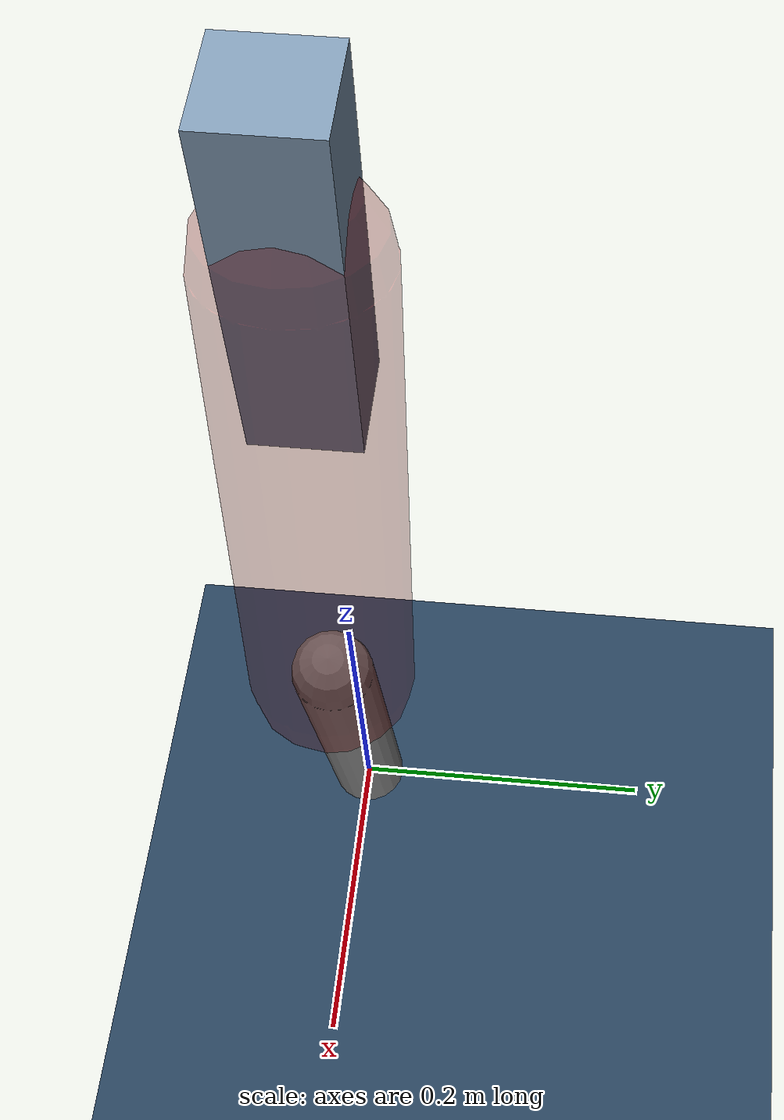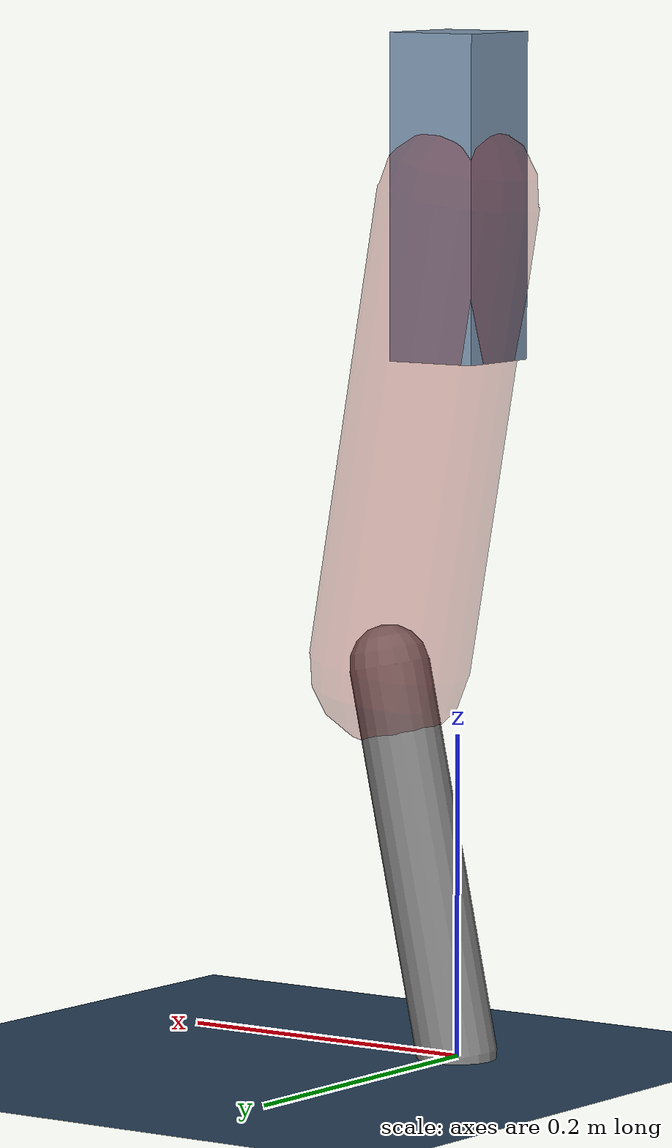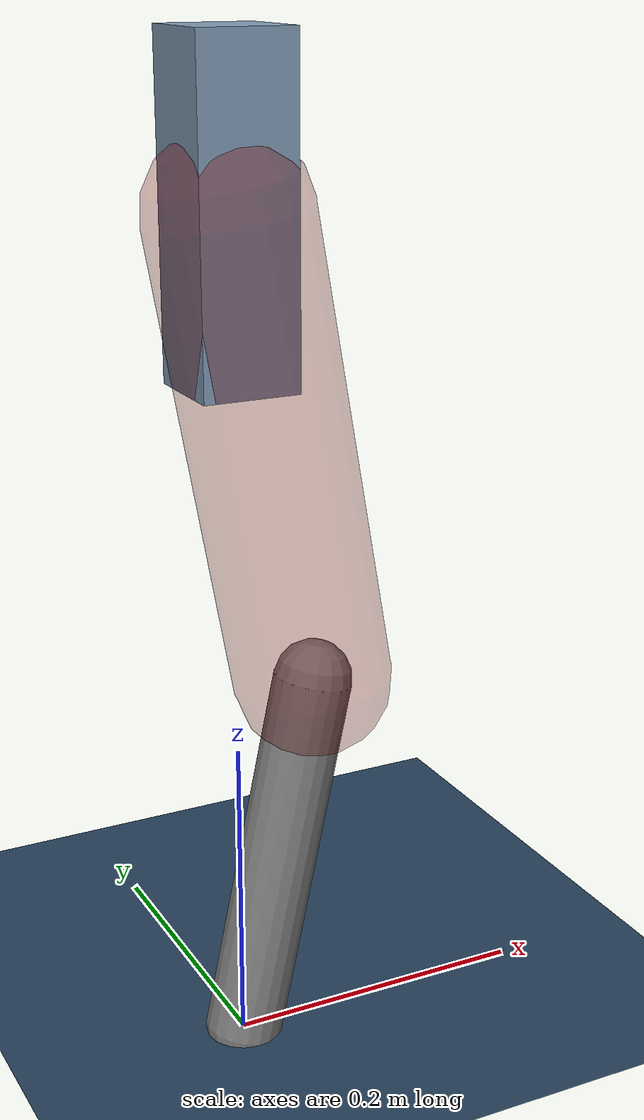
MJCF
<mujoco model="Hopper2D">
	<compiler inertiafromgeom="true" angle="radian" />
	<option timestep="0.001" integrator="implicit" cone="elliptic" solver="Newton" tolerance="1e-10" />

	<default>
		<geom contype="1" conaffinity="1" condim="3" friction="2 0.005 0.0001" solref="0.005 1" />
		<joint limited="true" damping="0.1" />
	</default>

	<asset>
		<texture name="skybox" type="skybox" builtin="gradient" rgb1=".4 .6 .8" rgb2="0 0 0" width="800" height="800" />
		<texture name="grid" type="2d" builtin="checker" rgb1=".1 .2 .3" rgb2=".2 .3 .4" width="300" height="300" mark="edge" markrgb=".2 .3 .4" />
		<material name="ground" texture="grid" texrepeat="1 1" texuniform="true" reflectance="0.1" />
		<material name="leg" rgba="0.5 0.6 0.7 1" />
	</asset>

	<worldbody>

		<geom name="floor" type="plane" size="5 5 0.25" material="ground" />

		<light directional="false" diffuse="0.8 0.8 0.8" specular="0.3 0.3 0.3" pos="0 0 2" dir="0 0 -1" />
		<light mode="targetbodycom" target="base" directional="false" diffuse="0.8 0.8 0.8" specular="0.3 0.3 0.3" pos="0 0 2" dir="0 0 -1" />

		<camera name="fixed" pos="0 -2 1" xyaxes="1 0 0 0 0 1" />
		<camera name="tracking" mode="trackcom" pos="0 -3 1" />

		<body name="root" pos="0 0 0.5308841945474456">
			<joint name="slide_x" type="slide" axis="1 0 0" range="-100 100" />
			<joint name="slide_z" type="slide" axis="0 0 1" range="0 10" />

			<body name="base" pos="0 0 0">
				<geom name="torso" type="box" size="0.03 0.03 0.1" mass="2.08" material="leg" />

				<body name="link1" pos="0 0 0" euler="0 1.3954648189588945 0">
					<joint type="hinge" axis="0 -1 0" pos="0 0 0" name="hinge1" limited="true" range="-3.14 3.14" stiffness="0" damping="0.1" />
					<geom name="thigh" type="capsule" fromto="0 0 0 0.2954302659975166 0 0" size="0.05" rgba="0.5 0 0 0.3" mass="0.9764186915935431" />

					<body name="link2" pos="0.2954302659975166 0 0" euler="0 0.38685616040208465 0">
						<joint type="hinge" axis="0 -1 0" pos="0 0 0" name="hinge2" limited="true" range="-3.14 3.14" stiffness="0" damping="0.1" />
						<geom name="shank" type="capsule" fromto="0 0 0 0.24545392854992903 0 0" size="0.025" mass="0.4387631428399432" />

					</body>
				</body>
			</body>
		</body>
	</worldbody>

	<actuator>
		<motor name="torque1" joint="hinge1" ctrlrange="-61.75010827892057 61.75010827892057" ctrllimited="true" gear="1" />
		<motor name="torque2" joint="hinge2" ctrlrange="-89.65910992649384 89.65910992649384" ctrllimited="true" gear="1" />
	</actuator>
</mujoco>
